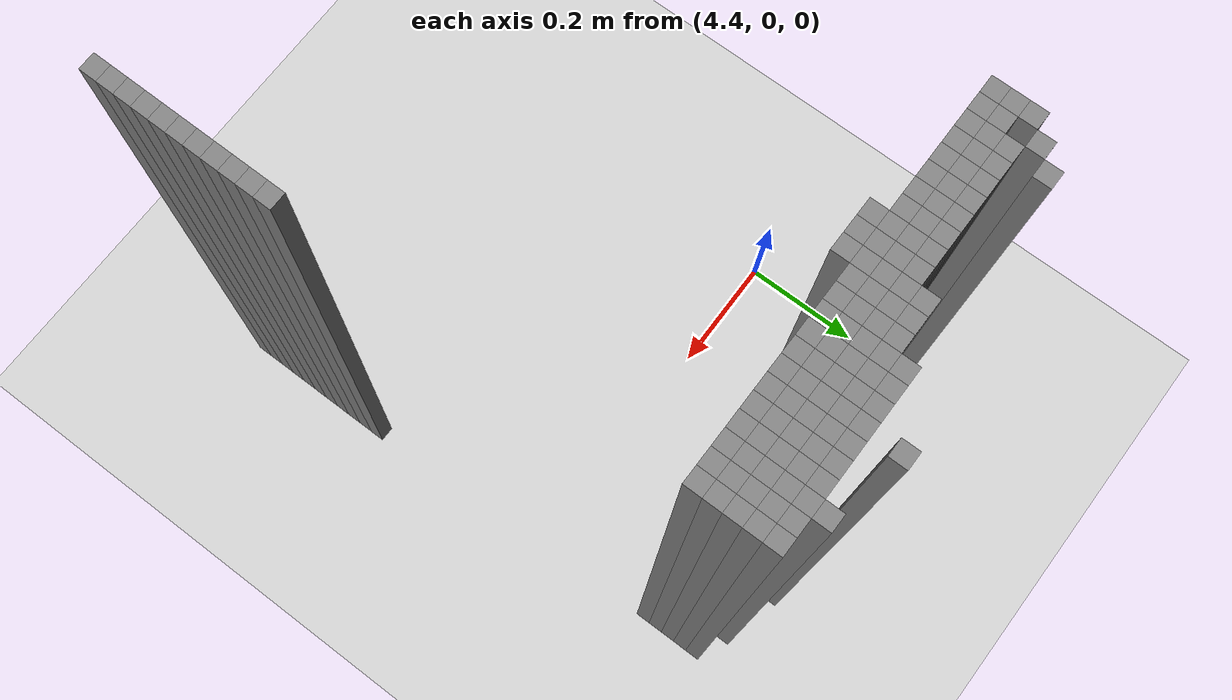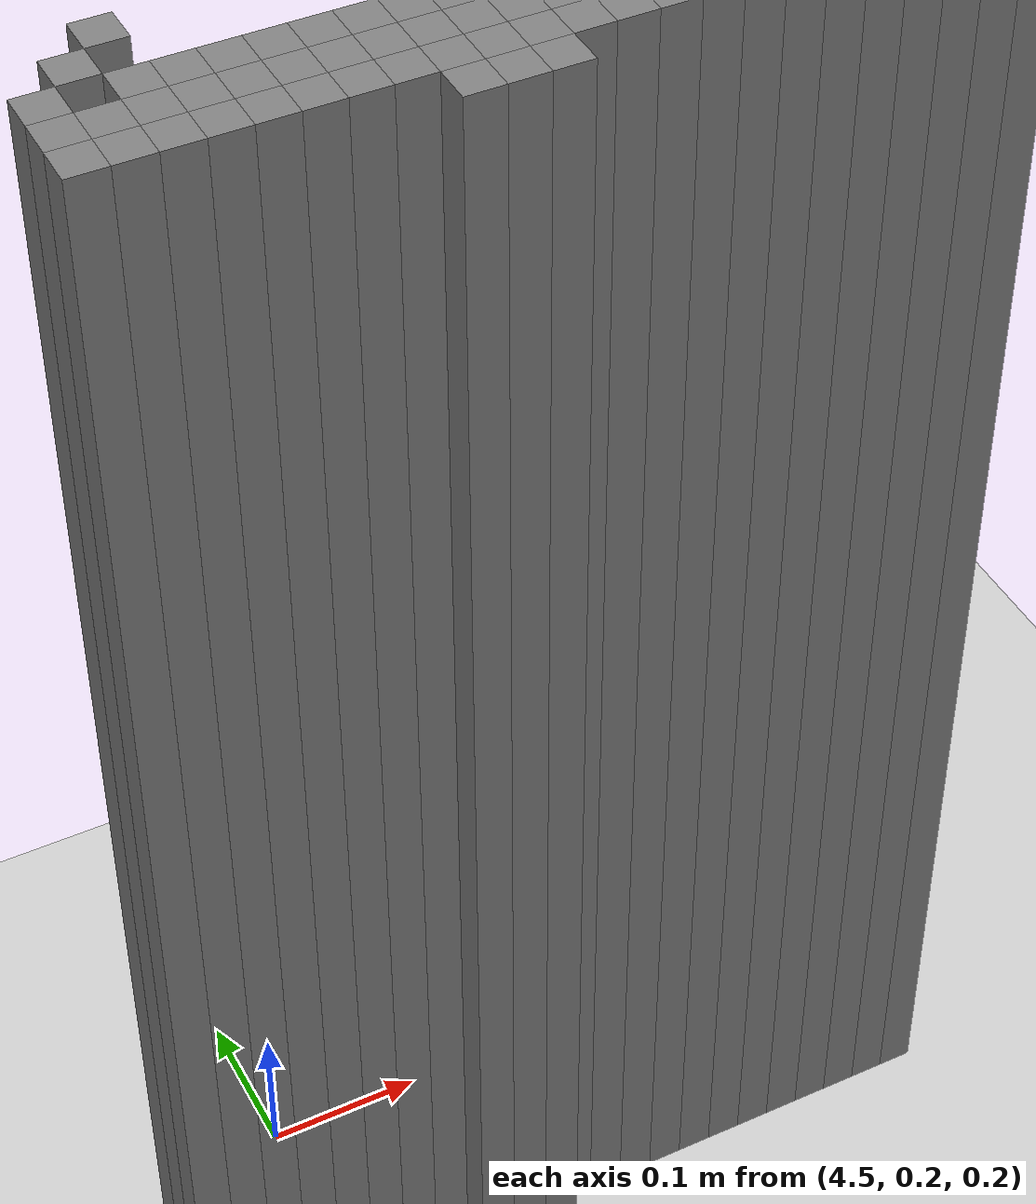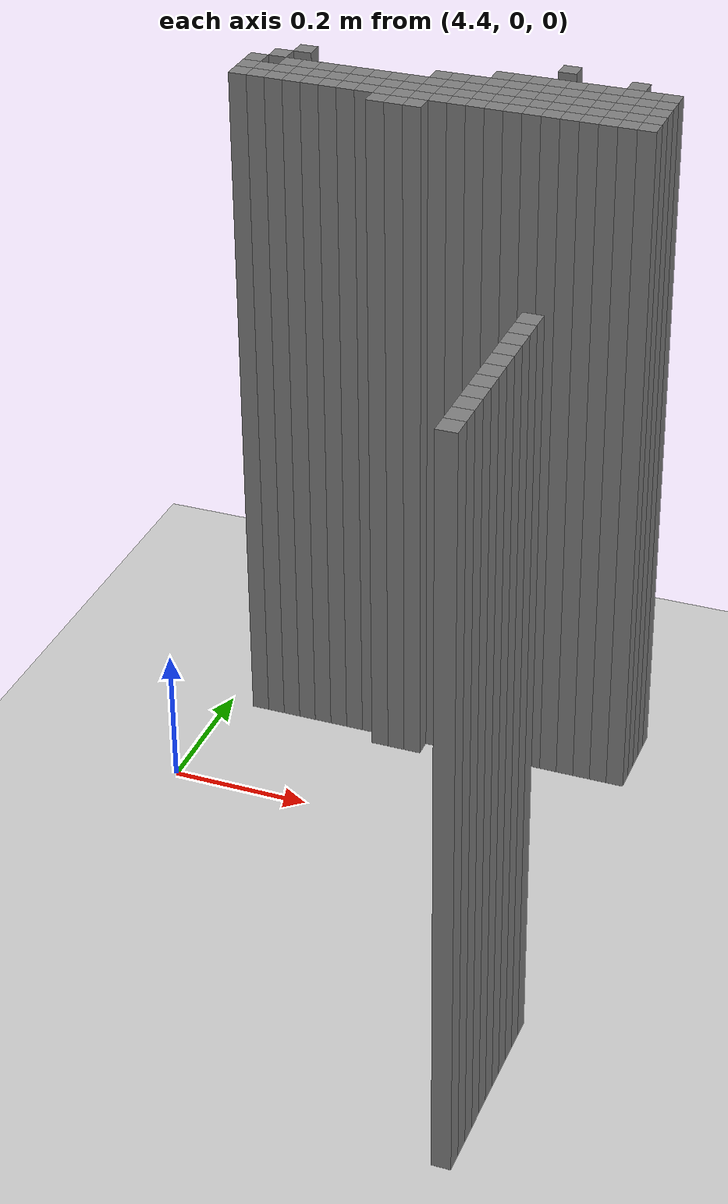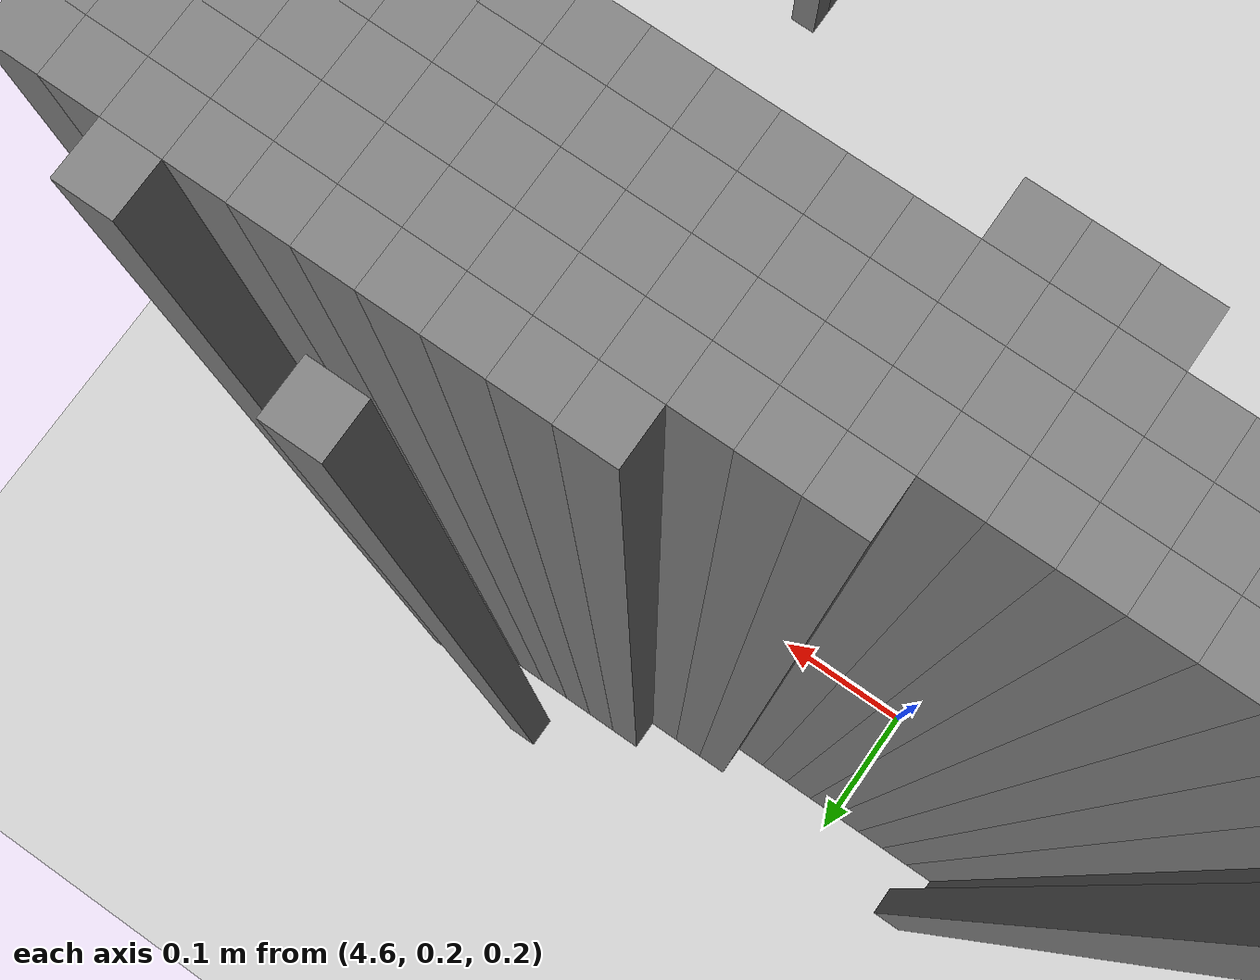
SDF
<sdf version="1.6">
 <world name="map_world">
  <include><uri>model://ground_plane</uri></include>
  <include><uri>model://sun</uri></include>
  <model name="obs_287_35">
   <static>true</static>
   <link name="link">
    <collision name="collision"><geometry><box><size>0.025 0.025 1.0</size></box></geometry></collision>
    <visual name="visual">
     <geometry><box><size>0.025 0.025 1.0</size></box></geometry>
     <material><ambient>0.5 0.5 0.5 1</ambient></material>
    </visual>
   </link>
   <pose>4.848765 0.35592900000000016 0.5 0 0 0</pose>
  </model>
  <model name="obs_291_36">
   <static>true</static>
   <link name="link">
    <collision name="collision"><geometry><box><size>0.025 0.025 1.0</size></box></geometry></collision>
    <visual name="visual">
     <geometry><box><size>0.025 0.025 1.0</size></box></geometry>
     <material><ambient>0.5 0.5 0.5 1</ambient></material>
    </visual>
   </link>
   <pose>4.948765 0.33092900000000025 0.5 0 0 0</pose>
  </model>
  <model name="obs_273_37">
   <static>true</static>
   <link name="link">
    <collision name="collision"><geometry><box><size>0.025 0.025 1.0</size></box></geometry></collision>
    <visual name="visual">
     <geometry><box><size>0.025 0.025 1.0</size></box></geometry>
     <material><ambient>0.5 0.5 0.5 1</ambient></material>
    </visual>
   </link>
   <pose>4.498765000000001 0.30592900000000034 0.5 0 0 0</pose>
  </model>
  <model name="obs_284_37">
   <static>true</static>
   <link name="link">
    <collision name="collision"><geometry><box><size>0.025 0.025 1.0</size></box></geometry></collision>
    <visual name="visual">
     <geometry><box><size>0.025 0.025 1.0</size></box></geometry>
     <material><ambient>0.5 0.5 0.5 1</ambient></material>
    </visual>
   </link>
   <pose>4.773765000000001 0.30592900000000034 0.5 0 0 0</pose>
  </model>
  <model name="obs_285_37">
   <static>true</static>
   <link name="link">
    <collision name="collision"><geometry><box><size>0.025 0.025 1.0</size></box></geometry></collision>
    <visual name="visual">
     <geometry><box><size>0.025 0.025 1.0</size></box></geometry>
     <material><ambient>0.5 0.5 0.5 1</ambient></material>
    </visual>
   </link>
   <pose>4.7987649999999995 0.30592900000000034 0.5 0 0 0</pose>
  </model>
  <model name="obs_286_37">
   <static>true</static>
   <link name="link">
    <collision name="collision"><geometry><box><size>0.025 0.025 1.0</size></box></geometry></collision>
    <visual name="visual">
     <geometry><box><size>0.025 0.025 1.0</size></box></geometry>
     <material><ambient>0.5 0.5 0.5 1</ambient></material>
    </visual>
   </link>
   <pose>4.823765 0.30592900000000034 0.5 0 0 0</pose>
  </model>
  <model name="obs_287_37">
   <static>true</static>
   <link name="link">
    <collision name="collision"><geometry><box><size>0.025 0.025 1.0</size></box></geometry></collision>
    <visual name="visual">
     <geometry><box><size>0.025 0.025 1.0</size></box></geometry>
     <material><ambient>0.5 0.5 0.5 1</ambient></material>
    </visual>
   </link>
   <pose>4.848765 0.30592900000000034 0.5 0 0 0</pose>
  </model>
  <model name="obs_288_37">
   <static>true</static>
   <link name="link">
    <collision name="collision"><geometry><box><size>0.025 0.025 1.0</size></box></geometry></collision>
    <visual name="visual">
     <geometry><box><size>0.025 0.025 1.0</size></box></geometry>
     <material><ambient>0.5 0.5 0.5 1</ambient></material>
    </visual>
   </link>
   <pose>4.873765000000001 0.30592900000000034 0.5 0 0 0</pose>
  </model>
  <model name="obs_289_37">
   <static>true</static>
   <link name="link">
    <collision name="collision"><geometry><box><size>0.025 0.025 1.0</size></box></geometry></collision>
    <visual name="visual">
     <geometry><box><size>0.025 0.025 1.0</size></box></geometry>
     <material><ambient>0.5 0.5 0.5 1</ambient></material>
    </visual>
   </link>
   <pose>4.898765000000001 0.30592900000000034 0.5 0 0 0</pose>
  </model>
  <model name="obs_290_37">
   <static>true</static>
   <link name="link">
    <collision name="collision"><geometry><box><size>0.025 0.025 1.0</size></box></geometry></collision>
    <visual name="visual">
     <geometry><box><size>0.025 0.025 1.0</size></box></geometry>
     <material><ambient>0.5 0.5 0.5 1</ambient></material>
    </visual>
   </link>
   <pose>4.9237649999999995 0.30592900000000034 0.5 0 0 0</pose>
  </model>
  <model name="obs_291_37">
   <static>true</static>
   <link name="link">
    <collision name="collision"><geometry><box><size>0.025 0.025 1.0</size></box></geometry></collision>
    <visual name="visual">
     <geometry><box><size>0.025 0.025 1.0</size></box></geometry>
     <material><ambient>0.5 0.5 0.5 1</ambient></material>
    </visual>
   </link>
   <pose>4.948765 0.30592900000000034 0.5 0 0 0</pose>
  </model>
  <model name="obs_292_37">
   <static>true</static>
   <link name="link">
    <collision name="collision"><geometry><box><size>0.025 0.025 1.0</size></box></geometry></collision>
    <visual name="visual">
     <geometry><box><size>0.025 0.025 1.0</size></box></geometry>
     <material><ambient>0.5 0.5 0.5 1</ambient></material>
    </visual>
   </link>
   <pose>4.973765 0.30592900000000034 0.5 0 0 0</pose>
  </model>
  <model name="obs_293_37">
   <static>true</static>
   <link name="link">
    <collision name="collision"><geometry><box><size>0.025 0.025 1.0</size></box></geometry></collision>
    <visual name="visual">
     <geometry><box><size>0.025 0.025 1.0</size></box></geometry>
     <material><ambient>0.5 0.5 0.5 1</ambient></material>
    </visual>
   </link>
   <pose>4.998765000000001 0.30592900000000034 0.5 0 0 0</pose>
  </model>
  <model name="obs_272_38">
   <static>true</static>
   <link name="link">
    <collision name="collision"><geometry><box><size>0.025 0.025 1.0</size></box></geometry></collision>
    <visual name="visual">
     <geometry><box><size>0.025 0.025 1.0</size></box></geometry>
     <material><ambient>0.5 0.5 0.5 1</ambient></material>
    </visual>
   </link>
   <pose>4.473765 0.280929 0.5 0 0 0</pose>
  </model>
  <model name="obs_281_38">
   <static>true</static>
   <link name="link">
    <collision name="collision"><geometry><box><size>0.025 0.025 1.0</size></box></geometry></collision>
    <visual name="visual">
     <geometry><box><size>0.025 0.025 1.0</size></box></geometry>
     <material><ambient>0.5 0.5 0.5 1</ambient></material>
    </visual>
   </link>
   <pose>4.698765 0.280929 0.5 0 0 0</pose>
  </model>
  <model name="obs_282_38">
   <static>true</static>
   <link name="link">
    <collision name="collision"><geometry><box><size>0.025 0.025 1.0</size></box></geometry></collision>
    <visual name="visual">
     <geometry><box><size>0.025 0.025 1.0</size></box></geometry>
     <material><ambient>0.5 0.5 0.5 1</ambient></material>
    </visual>
   </link>
   <pose>4.723765 0.280929 0.5 0 0 0</pose>
  </model>
  <model name="obs_283_38">
   <static>true</static>
   <link name="link">
    <collision name="collision"><geometry><box><size>0.025 0.025 1.0</size></box></geometry></collision>
    <visual name="visual">
     <geometry><box><size>0.025 0.025 1.0</size></box></geometry>
     <material><ambient>0.5 0.5 0.5 1</ambient></material>
    </visual>
   </link>
   <pose>4.748765000000001 0.280929 0.5 0 0 0</pose>
  </model>
  <model name="obs_284_38">
   <static>true</static>
   <link name="link">
    <collision name="collision"><geometry><box><size>0.025 0.025 1.0</size></box></geometry></collision>
    <visual name="visual">
     <geometry><box><size>0.025 0.025 1.0</size></box></geometry>
     <material><ambient>0.5 0.5 0.5 1</ambient></material>
    </visual>
   </link>
   <pose>4.773765000000001 0.280929 0.5 0 0 0</pose>
  </model>
  <model name="obs_285_38">
   <static>true</static>
   <link name="link">
    <collision name="collision"><geometry><box><size>0.025 0.025 1.0</size></box></geometry></collision>
    <visual name="visual">
     <geometry><box><size>0.025 0.025 1.0</size></box></geometry>
     <material><ambient>0.5 0.5 0.5 1</ambient></material>
    </visual>
   </link>
   <pose>4.7987649999999995 0.280929 0.5 0 0 0</pose>
  </model>
  <model name="obs_286_38">
   <static>true</static>
   <link name="link">
    <collision name="collision"><geometry><box><size>0.025 0.025 1.0</size></box></geometry></collision>
    <visual name="visual">
     <geometry><box><size>0.025 0.025 1.0</size></box></geometry>
     <material><ambient>0.5 0.5 0.5 1</ambient></material>
    </visual>
   </link>
   <pose>4.823765 0.280929 0.5 0 0 0</pose>
  </model>
  <model name="obs_287_38">
   <static>true</static>
   <link name="link">
    <collision name="collision"><geometry><box><size>0.025 0.025 1.0</size></box></geometry></collision>
    <visual name="visual">
     <geometry><box><size>0.025 0.025 1.0</size></box></geometry>
     <material><ambient>0.5 0.5 0.5 1</ambient></material>
    </visual>
   </link>
   <pose>4.848765 0.280929 0.5 0 0 0</pose>
  </model>
  <model name="obs_288_38">
   <static>true</static>
   <link name="link">
    <collision name="collision"><geometry><box><size>0.025 0.025 1.0</size></box></geometry></collision>
    <visual name="visual">
     <geometry><box><size>0.025 0.025 1.0</size></box></geometry>
     <material><ambient>0.5 0.5 0.5 1</ambient></material>
    </visual>
   </link>
   <pose>4.873765000000001 0.280929 0.5 0 0 0</pose>
  </model>
  <model name="obs_289_38">
   <static>true</static>
   <link name="link">
    <collision name="collision"><geometry><box><size>0.025 0.025 1.0</size></box></geometry></collision>
    <visual name="visual">
     <geometry><box><size>0.025 0.025 1.0</size></box></geometry>
     <material><ambient>0.5 0.5 0.5 1</ambient></material>
    </visual>
   </link>
   <pose>4.898765000000001 0.280929 0.5 0 0 0</pose>
  </model>
  <model name="obs_290_38">
   <static>true</static>
   <link name="link">
    <collision name="collision"><geometry><box><size>0.025 0.025 1.0</size></box></geometry></collision>
    <visual name="visual">
     <geometry><box><size>0.025 0.025 1.0</size></box></geometry>
     <material><ambient>0.5 0.5 0.5 1</ambient></material>
    </visual>
   </link>
   <pose>4.9237649999999995 0.280929 0.5 0 0 0</pose>
  </model>
  <model name="obs_291_38">
   <static>true</static>
   <link name="link">
    <collision name="collision"><geometry><box><size>0.025 0.025 1.0</size></box></geometry></collision>
    <visual name="visual">
     <geometry><box><size>0.025 0.025 1.0</size></box></geometry>
     <material><ambient>0.5 0.5 0.5 1</ambient></material>
    </visual>
   </link>
   <pose>4.948765 0.280929 0.5 0 0 0</pose>
  </model>
  <model name="obs_292_38">
   <static>true</static>
   <link name="link">
    <collision name="collision"><geometry><box><size>0.025 0.025 1.0</size></box></geometry></collision>
    <visual name="visual">
     <geometry><box><size>0.025 0.025 1.0</size></box></geometry>
     <material><ambient>0.5 0.5 0.5 1</ambient></material>
    </visual>
   </link>
   <pose>4.973765 0.280929 0.5 0 0 0</pose>
  </model>
  <model name="obs_293_38">
   <static>true</static>
   <link name="link">
    <collision name="collision"><geometry><box><size>0.025 0.025 1.0</size></box></geometry></collision>
    <visual name="visual">
     <geometry><box><size>0.025 0.025 1.0</size></box></geometry>
     <material><ambient>0.5 0.5 0.5 1</ambient></material>
    </visual>
   </link>
   <pose>4.998765000000001 0.280929 0.5 0 0 0</pose>
  </model>
  <model name="obs_271_39">
   <static>true</static>
   <link name="link">
    <collision name="collision"><geometry><box><size>0.025 0.025 1.0</size></box></geometry></collision>
    <visual name="visual">
     <geometry><box><size>0.025 0.025 1.0</size></box></geometry>
     <material><ambient>0.5 0.5 0.5 1</ambient></material>
    </visual>
   </link>
   <pose>4.448765 0.2559290000000001 0.5 0 0 0</pose>
  </model>
  <model name="obs_273_39">
   <static>true</static>
   <link name="link">
    <collision name="collision"><geometry><box><size>0.025 0.025 1.0</size></box></geometry></collision>
    <visual name="visual">
     <geometry><box><size>0.025 0.025 1.0</size></box></geometry>
     <material><ambient>0.5 0.5 0.5 1</ambient></material>
    </visual>
   </link>
   <pose>4.498765000000001 0.2559290000000001 0.5 0 0 0</pose>
  </model>
  <model name="obs_274_39">
   <static>true</static>
   <link name="link">
    <collision name="collision"><geometry><box><size>0.025 0.025 1.0</size></box></geometry></collision>
    <visual name="visual">
     <geometry><box><size>0.025 0.025 1.0</size></box></geometry>
     <material><ambient>0.5 0.5 0.5 1</ambient></material>
    </visual>
   </link>
   <pose>4.523765000000001 0.2559290000000001 0.5 0 0 0</pose>
  </model>
  <model name="obs_275_39">
   <static>true</static>
   <link name="link">
    <collision name="collision"><geometry><box><size>0.025 0.025 1.0</size></box></geometry></collision>
    <visual name="visual">
     <geometry><box><size>0.025 0.025 1.0</size></box></geometry>
     <material><ambient>0.5 0.5 0.5 1</ambient></material>
    </visual>
   </link>
   <pose>4.5487649999999995 0.2559290000000001 0.5 0 0 0</pose>
  </model>
  <model name="obs_276_39">
   <static>true</static>
   <link name="link">
    <collision name="collision"><geometry><box><size>0.025 0.025 1.0</size></box></geometry></collision>
    <visual name="visual">
     <geometry><box><size>0.025 0.025 1.0</size></box></geometry>
     <material><ambient>0.5 0.5 0.5 1</ambient></material>
    </visual>
   </link>
   <pose>4.573765 0.2559290000000001 0.5 0 0 0</pose>
  </model>
  <model name="obs_277_39">
   <static>true</static>
   <link name="link">
    <collision name="collision"><geometry><box><size>0.025 0.025 1.0</size></box></geometry></collision>
    <visual name="visual">
     <geometry><box><size>0.025 0.025 1.0</size></box></geometry>
     <material><ambient>0.5 0.5 0.5 1</ambient></material>
    </visual>
   </link>
   <pose>4.598765 0.2559290000000001 0.5 0 0 0</pose>
  </model>
  <model name="obs_278_39">
   <static>true</static>
   <link name="link">
    <collision name="collision"><geometry><box><size>0.025 0.025 1.0</size></box></geometry></collision>
    <visual name="visual">
     <geometry><box><size>0.025 0.025 1.0</size></box></geometry>
     <material><ambient>0.5 0.5 0.5 1</ambient></material>
    </visual>
   </link>
   <pose>4.623765000000001 0.2559290000000001 0.5 0 0 0</pose>
  </model>
  <model name="obs_279_39">
   <static>true</static>
   <link name="link">
    <collision name="collision"><geometry><box><size>0.025 0.025 1.0</size></box></geometry></collision>
    <visual name="visual">
     <geometry><box><size>0.025 0.025 1.0</size></box></geometry>
     <material><ambient>0.5 0.5 0.5 1</ambient></material>
    </visual>
   </link>
   <pose>4.648765000000001 0.2559290000000001 0.5 0 0 0</pose>
  </model>
  <model name="obs_280_39">
   <static>true</static>
   <link name="link">
    <collision name="collision"><geometry><box><size>0.025 0.025 1.0</size></box></geometry></collision>
    <visual name="visual">
     <geometry><box><size>0.025 0.025 1.0</size></box></geometry>
     <material><ambient>0.5 0.5 0.5 1</ambient></material>
    </visual>
   </link>
   <pose>4.6737649999999995 0.2559290000000001 0.5 0 0 0</pose>
  </model>
  <model name="obs_281_39">
   <static>true</static>
   <link name="link">
    <collision name="collision"><geometry><box><size>0.025 0.025 1.0</size></box></geometry></collision>
    <visual name="visual">
     <geometry><box><size>0.025 0.025 1.0</size></box></geometry>
     <material><ambient>0.5 0.5 0.5 1</ambient></material>
    </visual>
   </link>
   <pose>4.698765 0.2559290000000001 0.5 0 0 0</pose>
  </model>
  <model name="obs_282_39">
   <static>true</static>
   <link name="link">
    <collision name="collision"><geometry><box><size>0.025 0.025 1.0</size></box></geometry></collision>
    <visual name="visual">
     <geometry><box><size>0.025 0.025 1.0</size></box></geometry>
     <material><ambient>0.5 0.5 0.5 1</ambient></material>
    </visual>
   </link>
   <pose>4.723765 0.2559290000000001 0.5 0 0 0</pose>
  </model>
  <model name="obs_283_39">
   <static>true</static>
   <link name="link">
    <collision name="collision"><geometry><box><size>0.025 0.025 1.0</size></box></geometry></collision>
    <visual name="visual">
     <geometry><box><size>0.025 0.025 1.0</size></box></geometry>
     <material><ambient>0.5 0.5 0.5 1</ambient></material>
    </visual>
   </link>
   <pose>4.748765000000001 0.2559290000000001 0.5 0 0 0</pose>
  </model>
  <model name="obs_284_39">
   <static>true</static>
   <link name="link">
    <collision name="collision"><geometry><box><size>0.025 0.025 1.0</size></box></geometry></collision>
    <visual name="visual">
     <geometry><box><size>0.025 0.025 1.0</size></box></geometry>
     <material><ambient>0.5 0.5 0.5 1</ambient></material>
    </visual>
   </link>
   <pose>4.773765000000001 0.2559290000000001 0.5 0 0 0</pose>
  </model>
  <model name="obs_285_39">
   <static>true</static>
   <link name="link">
    <collision name="collision"><geometry><box><size>0.025 0.025 1.0</size></box></geometry></collision>
    <visual name="visual">
     <geometry><box><size>0.025 0.025 1.0</size></box></geometry>
     <material><ambient>0.5 0.5 0.5 1</ambient></material>
    </visual>
   </link>
   <pose>4.7987649999999995 0.2559290000000001 0.5 0 0 0</pose>
  </model>
  <model name="obs_286_39">
   <static>true</static>
   <link name="link">
    <collision name="collision"><geometry><box><size>0.025 0.025 1.0</size></box></geometry></collision>
    <visual name="visual">
     <geometry><box><size>0.025 0.025 1.0</size></box></geometry>
     <material><ambient>0.5 0.5 0.5 1</ambient></material>
    </visual>
   </link>
   <pose>4.823765 0.2559290000000001 0.5 0 0 0</pose>
  </model>
  <model name="obs_287_39">
   <static>true</static>
   <link name="link">
    <collision name="collision"><geometry><box><size>0.025 0.025 1.0</size></box></geometry></collision>
    <visual name="visual">
     <geometry><box><size>0.025 0.025 1.0</size></box></geometry>
     <material><ambient>0.5 0.5 0.5 1</ambient></material>
    </visual>
   </link>
   <pose>4.848765 0.2559290000000001 0.5 0 0 0</pose>
  </model>
  <model name="obs_288_39">
   <static>true</static>
   <link name="link">
    <collision name="collision"><geometry><box><size>0.025 0.025 1.0</size></box></geometry></collision>
    <visual name="visual">
     <geometry><box><size>0.025 0.025 1.0</size></box></geometry>
     <material><ambient>0.5 0.5 0.5 1</ambient></material>
    </visual>
   </link>
   <pose>4.873765000000001 0.2559290000000001 0.5 0 0 0</pose>
  </model>
  <model name="obs_289_39">
   <static>true</static>
   <link name="link">
    <collision name="collision"><geometry><box><size>0.025 0.025 1.0</size></box></geometry></collision>
    <visual name="visual">
     <geometry><box><size>0.025 0.025 1.0</size></box></geometry>
     <material><ambient>0.5 0.5 0.5 1</ambient></material>
    </visual>
   </link>
   <pose>4.898765000000001 0.2559290000000001 0.5 0 0 0</pose>
  </model>
  <model name="obs_290_39">
   <static>true</static>
   <link name="link">
    <collision name="collision"><geometry><box><size>0.025 0.025 1.0</size></box></geometry></collision>
    <visual name="visual">
     <geometry><box><size>0.025 0.025 1.0</size></box></geometry>
     <material><ambient>0.5 0.5 0.5 1</ambient></material>
    </visual>
   </link>
   <pose>4.9237649999999995 0.2559290000000001 0.5 0 0 0</pose>
  </model>
  <model name="obs_291_39">
   <static>true</static>
   <link name="link">
    <collision name="collision"><geometry><box><size>0.025 0.025 1.0</size></box></geometry></collision>
    <visual name="visual">
     <geometry><box><size>0.025 0.025 1.0</size></box></geometry>
     <material><ambient>0.5 0.5 0.5 1</ambient></material>
    </visual>
   </link>
   <pose>4.948765 0.2559290000000001 0.5 0 0 0</pose>
  </model>
  <model name="obs_292_39">
   <static>true</static>
   <link name="link">
    <collision name="collision"><geometry><box><size>0.025 0.025 1.0</size></box></geometry></collision>
    <visual name="visual">
     <geometry><box><size>0.025 0.025 1.0</size></box></geometry>
     <material><ambient>0.5 0.5 0.5 1</ambient></material>
    </visual>
   </link>
   <pose>4.973765 0.2559290000000001 0.5 0 0 0</pose>
  </model>
  <model name="obs_293_39">
   <static>true</static>
   <link name="link">
    <collision name="collision"><geometry><box><size>0.025 0.025 1.0</size></box></geometry></collision>
    <visual name="visual">
     <geometry><box><size>0.025 0.025 1.0</size></box></geometry>
     <material><ambient>0.5 0.5 0.5 1</ambient></material>
    </visual>
   </link>
   <pose>4.998765000000001 0.2559290000000001 0.5 0 0 0</pose>
  </model>
  <model name="obs_271_40">
   <static>true</static>
   <link name="link">
    <collision name="collision"><geometry><box><size>0.025 0.025 1.0</size></box></geometry></collision>
    <visual name="visual">
     <geometry><box><size>0.025 0.025 1.0</size></box></geometry>
     <material><ambient>0.5 0.5 0.5 1</ambient></material>
    </visual>
   </link>
   <pose>4.448765 0.23092900000000016 0.5 0 0 0</pose>
  </model>
  <model name="obs_272_40">
   <static>true</static>
   <link name="link">
    <collision name="collision"><geometry><box><size>0.025 0.025 1.0</size></box></geometry></collision>
    <visual name="visual">
     <geometry><box><size>0.025 0.025 1.0</size></box></geometry>
     <material><ambient>0.5 0.5 0.5 1</ambient></material>
    </visual>
   </link>
   <pose>4.473765 0.23092900000000016 0.5 0 0 0</pose>
  </model>
  <model name="obs_273_40">
   <static>true</static>
   <link name="link">
    <collision name="collision"><geometry><box><size>0.025 0.025 1.0</size></box></geometry></collision>
    <visual name="visual">
     <geometry><box><size>0.025 0.025 1.0</size></box></geometry>
     <material><ambient>0.5 0.5 0.5 1</ambient></material>
    </visual>
   </link>
   <pose>4.498765000000001 0.23092900000000016 0.5 0 0 0</pose>
  </model>
  <model name="obs_274_40">
   <static>true</static>
   <link name="link">
    <collision name="collision"><geometry><box><size>0.025 0.025 1.0</size></box></geometry></collision>
    <visual name="visual">
     <geometry><box><size>0.025 0.025 1.0</size></box></geometry>
     <material><ambient>0.5 0.5 0.5 1</ambient></material>
    </visual>
   </link>
   <pose>4.523765000000001 0.23092900000000016 0.5 0 0 0</pose>
  </model>
  <model name="obs_275_40">
   <static>true</static>
   <link name="link">
    <collision name="collision"><geometry><box><size>0.025 0.025 1.0</size></box></geometry></collision>
    <visual name="visual">
     <geometry><box><size>0.025 0.025 1.0</size></box></geometry>
     <material><ambient>0.5 0.5 0.5 1</ambient></material>
    </visual>
   </link>
   <pose>4.5487649999999995 0.23092900000000016 0.5 0 0 0</pose>
  </model>
  <model name="obs_276_40">
   <static>true</static>
   <link name="link">
    <collision name="collision"><geometry><box><size>0.025 0.025 1.0</size></box></geometry></collision>
    <visual name="visual">
     <geometry><box><size>0.025 0.025 1.0</size></box></geometry>
     <material><ambient>0.5 0.5 0.5 1</ambient></material>
    </visual>
   </link>
   <pose>4.573765 0.23092900000000016 0.5 0 0 0</pose>
  </model>
  <model name="obs_277_40">
   <static>true</static>
   <link name="link">
    <collision name="collision"><geometry><box><size>0.025 0.025 1.0</size></box></geometry></collision>
    <visual name="visual">
     <geometry><box><size>0.025 0.025 1.0</size></box></geometry>
     <material><ambient>0.5 0.5 0.5 1</ambient></material>
    </visual>
   </link>
   <pose>4.598765 0.23092900000000016 0.5 0 0 0</pose>
  </model>
  <model name="obs_278_40">
   <static>true</static>
   <link name="link">
    <collision name="collision"><geometry><box><size>0.025 0.025 1.0</size></box></geometry></collision>
    <visual name="visual">
     <geometry><box><size>0.025 0.025 1.0</size></box></geometry>
     <material><ambient>0.5 0.5 0.5 1</ambient></material>
    </visual>
   </link>
   <pose>4.623765000000001 0.23092900000000016 0.5 0 0 0</pose>
  </model>
  <model name="obs_279_40">
   <static>true</static>
   <link name="link">
    <collision name="collision"><geometry><box><size>0.025 0.025 1.0</size></box></geometry></collision>
    <visual name="visual">
     <geometry><box><size>0.025 0.025 1.0</size></box></geometry>
     <material><ambient>0.5 0.5 0.5 1</ambient></material>
    </visual>
   </link>
   <pose>4.648765000000001 0.23092900000000016 0.5 0 0 0</pose>
  </model>
  <model name="obs_280_40">
   <static>true</static>
   <link name="link">
    <collision name="collision"><geometry><box><size>0.025 0.025 1.0</size></box></geometry></collision>
    <visual name="visual">
     <geometry><box><size>0.025 0.025 1.0</size></box></geometry>
     <material><ambient>0.5 0.5 0.5 1</ambient></material>
    </visual>
   </link>
   <pose>4.6737649999999995 0.23092900000000016 0.5 0 0 0</pose>
  </model>
  <model name="obs_281_40">
   <static>true</static>
   <link name="link">
    <collision name="collision"><geometry><box><size>0.025 0.025 1.0</size></box></geometry></collision>
    <visual name="visual">
     <geometry><box><size>0.025 0.025 1.0</size></box></geometry>
     <material><ambient>0.5 0.5 0.5 1</ambient></material>
    </visual>
   </link>
   <pose>4.698765 0.23092900000000016 0.5 0 0 0</pose>
  </model>
  <model name="obs_282_40">
   <static>true</static>
   <link name="link">
    <collision name="collision"><geometry><box><size>0.025 0.025 1.0</size></box></geometry></collision>
    <visual name="visual">
     <geometry><box><size>0.025 0.025 1.0</size></box></geometry>
     <material><ambient>0.5 0.5 0.5 1</ambient></material>
    </visual>
   </link>
   <pose>4.723765 0.23092900000000016 0.5 0 0 0</pose>
  </model>
  <model name="obs_283_40">
   <static>true</static>
   <link name="link">
    <collision name="collision"><geometry><box><size>0.025 0.025 1.0</size></box></geometry></collision>
    <visual name="visual">
     <geometry><box><size>0.025 0.025 1.0</size></box></geometry>
     <material><ambient>0.5 0.5 0.5 1</ambient></material>
    </visual>
   </link>
   <pose>4.748765000000001 0.23092900000000016 0.5 0 0 0</pose>
  </model>
  <model name="obs_284_40">
   <static>true</static>
   <link name="link">
    <collision name="collision"><geometry><box><size>0.025 0.025 1.0</size></box></geometry></collision>
    <visual name="visual">
     <geometry><box><size>0.025 0.025 1.0</size></box></geometry>
     <material><ambient>0.5 0.5 0.5 1</ambient></material>
    </visual>
   </link>
   <pose>4.773765000000001 0.23092900000000016 0.5 0 0 0</pose>
  </model>
  <model name="obs_285_40">
   <static>true</static>
   <link name="link">
    <collision name="collision"><geometry><box><size>0.025 0.025 1.0</size></box></geometry></collision>
    <visual name="visual">
     <geometry><box><size>0.025 0.025 1.0</size></box></geometry>
     <material><ambient>0.5 0.5 0.5 1</ambient></material>
    </visual>
   </link>
   <pose>4.7987649999999995 0.23092900000000016 0.5 0 0 0</pose>
  </model>
  <model name="obs_286_40">
   <static>true</static>
   <link name="link">
    <collision name="collision"><geometry><box><size>0.025 0.025 1.0</size></box></geometry></collision>
    <visual name="visual">
     <geometry><box><size>0.025 0.025 1.0</size></box></geometry>
     <material><ambient>0.5 0.5 0.5 1</ambient></material>
    </visual>
   </link>
   <pose>4.823765 0.23092900000000016 0.5 0 0 0</pose>
  </model>
  <model name="obs_287_40">
   <static>true</static>
   <link name="link">
    <collision name="collision"><geometry><box><size>0.025 0.025 1.0</size></box></geometry></collision>
    <visual name="visual">
     <geometry><box><size>0.025 0.025 1.0</size></box></geometry>
     <material><ambient>0.5 0.5 0.5 1</ambient></material>
    </visual>
   </link>
   <pose>4.848765 0.23092900000000016 0.5 0 0 0</pose>
  </model>
  <model name="obs_288_40">
   <static>true</static>
   <link name="link">
    <collision name="collision"><geometry><box><size>0.025 0.025 1.0</size></box></geometry></collision>
    <visual name="visual">
     <geometry><box><size>0.025 0.025 1.0</size></box></geometry>
     <material><ambient>0.5 0.5 0.5 1</ambient></material>
    </visual>
   </link>
   <pose>4.873765000000001 0.23092900000000016 0.5 0 0 0</pose>
  </model>
  <model name="obs_289_40">
   <static>true</static>
   <link name="link">
    <collision name="collision"><geometry><box><size>0.025 0.025 1.0</size></box></geometry></collision>
    <visual name="visual">
     <geometry><box><size>0.025 0.025 1.0</size></box></geometry>
     <material><ambient>0.5 0.5 0.5 1</ambient></material>
    </visual>
   </link>
   <pose>4.898765000000001 0.23092900000000016 0.5 0 0 0</pose>
  </model>
  <model name="obs_290_40">
   <static>true</static>
   <link name="link">
    <collision name="collision"><geometry><box><size>0.025 0.025 1.0</size></box></geometry></collision>
    <visual name="visual">
     <geometry><box><size>0.025 0.025 1.0</size></box></geometry>
     <material><ambient>0.5 0.5 0.5 1</ambient></material>
    </visual>
   </link>
   <pose>4.9237649999999995 0.23092900000000016 0.5 0 0 0</pose>
  </model>
  <model name="obs_291_40">
   <static>true</static>
   <link name="link">
    <collision name="collision"><geometry><box><size>0.025 0.025 1.0</size></box></geometry></collision>
    <visual name="visual">
     <geometry><box><size>0.025 0.025 1.0</size></box></geometry>
     <material><ambient>0.5 0.5 0.5 1</ambient></material>
    </visual>
   </link>
   <pose>4.948765 0.23092900000000016 0.5 0 0 0</pose>
  </model>
  <model name="obs_292_40">
   <static>true</static>
   <link name="link">
    <collision name="collision"><geometry><box><size>0.025 0.025 1.0</size></box></geometry></collision>
    <visual name="visual">
     <geometry><box><size>0.025 0.025 1.0</size></box></geometry>
     <material><ambient>0.5 0.5 0.5 1</ambient></material>
    </visual>
   </link>
   <pose>4.973765 0.23092900000000016 0.5 0 0 0</pose>
  </model>
  <model name="obs_293_40">
   <static>true</static>
   <link name="link">
    <collision name="collision"><geometry><box><size>0.025 0.025 1.0</size></box></geometry></collision>
    <visual name="visual">
     <geometry><box><size>0.025 0.025 1.0</size></box></geometry>
     <material><ambient>0.5 0.5 0.5 1</ambient></material>
    </visual>
   </link>
   <pose>4.998765000000001 0.23092900000000016 0.5 0 0 0</pose>
  </model>
  <model name="obs_271_41">
   <static>true</static>
   <link name="link">
    <collision name="collision"><geometry><box><size>0.025 0.025 1.0</size></box></geometry></collision>
    <visual name="visual">
     <geometry><box><size>0.025 0.025 1.0</size></box></geometry>
     <material><ambient>0.5 0.5 0.5 1</ambient></material>
    </visual>
   </link>
   <pose>4.448765 0.20592900000000025 0.5 0 0 0</pose>
  </model>
  <model name="obs_272_41">
   <static>true</static>
   <link name="link">
    <collision name="collision"><geometry><box><size>0.025 0.025 1.0</size></box></geometry></collision>
    <visual name="visual">
     <geometry><box><size>0.025 0.025 1.0</size></box></geometry>
     <material><ambient>0.5 0.5 0.5 1</ambient></material>
    </visual>
   </link>
   <pose>4.473765 0.20592900000000025 0.5 0 0 0</pose>
  </model>
  <model name="obs_273_41">
   <static>true</static>
   <link name="link">
    <collision name="collision"><geometry><box><size>0.025 0.025 1.0</size></box></geometry></collision>
    <visual name="visual">
     <geometry><box><size>0.025 0.025 1.0</size></box></geometry>
     <material><ambient>0.5 0.5 0.5 1</ambient></material>
    </visual>
   </link>
   <pose>4.498765000000001 0.20592900000000025 0.5 0 0 0</pose>
  </model>
  <model name="obs_274_41">
   <static>true</static>
   <link name="link">
    <collision name="collision"><geometry><box><size>0.025 0.025 1.0</size></box></geometry></collision>
    <visual name="visual">
     <geometry><box><size>0.025 0.025 1.0</size></box></geometry>
     <material><ambient>0.5 0.5 0.5 1</ambient></material>
    </visual>
   </link>
   <pose>4.523765000000001 0.20592900000000025 0.5 0 0 0</pose>
  </model>
  <model name="obs_275_41">
   <static>true</static>
   <link name="link">
    <collision name="collision"><geometry><box><size>0.025 0.025 1.0</size></box></geometry></collision>
    <visual name="visual">
     <geometry><box><size>0.025 0.025 1.0</size></box></geometry>
     <material><ambient>0.5 0.5 0.5 1</ambient></material>
    </visual>
   </link>
   <pose>4.5487649999999995 0.20592900000000025 0.5 0 0 0</pose>
  </model>
  <model name="obs_276_41">
   <static>true</static>
   <link name="link">
    <collision name="collision"><geometry><box><size>0.025 0.025 1.0</size></box></geometry></collision>
    <visual name="visual">
     <geometry><box><size>0.025 0.025 1.0</size></box></geometry>
     <material><ambient>0.5 0.5 0.5 1</ambient></material>
    </visual>
   </link>
   <pose>4.573765 0.20592900000000025 0.5 0 0 0</pose>
  </model>
  <model name="obs_277_41">
   <static>true</static>
   <link name="link">
    <collision name="collision"><geometry><box><size>0.025 0.025 1.0</size></box></geometry></collision>
    <visual name="visual">
     <geometry><box><size>0.025 0.025 1.0</size></box></geometry>
     <material><ambient>0.5 0.5 0.5 1</ambient></material>
    </visual>
   </link>
   <pose>4.598765 0.20592900000000025 0.5 0 0 0</pose>
  </model>
  <model name="obs_278_41">
   <static>true</static>
   <link name="link">
    <collision name="collision"><geometry><box><size>0.025 0.025 1.0</size></box></geometry></collision>
    <visual name="visual">
     <geometry><box><size>0.025 0.025 1.0</size></box></geometry>
     <material><ambient>0.5 0.5 0.5 1</ambient></material>
    </visual>
   </link>
   <pose>4.623765000000001 0.20592900000000025 0.5 0 0 0</pose>
  </model>
  <model name="obs_279_41">
   <static>true</static>
   <link name="link">
    <collision name="collision"><geometry><box><size>0.025 0.025 1.0</size></box></geometry></collision>
    <visual name="visual">
     <geometry><box><size>0.025 0.025 1.0</size></box></geometry>
     <material><ambient>0.5 0.5 0.5 1</ambient></material>
    </visual>
   </link>
   <pose>4.648765000000001 0.20592900000000025 0.5 0 0 0</pose>
  </model>
  <model name="obs_280_41">
   <static>true</static>
   <link name="link">
    <collision name="collision"><geometry><box><size>0.025 0.025 1.0</size></box></geometry></collision>
    <visual name="visual">
     <geometry><box><size>0.025 0.025 1.0</size></box></geometry>
     <material><ambient>0.5 0.5 0.5 1</ambient></material>
    </visual>
   </link>
   <pose>4.6737649999999995 0.20592900000000025 0.5 0 0 0</pose>
  </model>
  <model name="obs_281_41">
   <static>true</static>
   <link name="link">
    <collision name="collision"><geometry><box><size>0.025 0.025 1.0</size></box></geometry></collision>
    <visual name="visual">
     <geometry><box><size>0.025 0.025 1.0</size></box></geometry>
     <material><ambient>0.5 0.5 0.5 1</ambient></material>
    </visual>
   </link>
   <pose>4.698765 0.20592900000000025 0.5 0 0 0</pose>
  </model>
  <model name="obs_282_41">
   <static>true</static>
   <link name="link">
    <collision name="collision"><geometry><box><size>0.025 0.025 1.0</size></box></geometry></collision>
    <visual name="visual">
     <geometry><box><size>0.025 0.025 1.0</size></box></geometry>
     <material><ambient>0.5 0.5 0.5 1</ambient></material>
    </visual>
   </link>
   <pose>4.723765 0.20592900000000025 0.5 0 0 0</pose>
  </model>
  <model name="obs_283_41">
   <static>true</static>
   <link name="link">
    <collision name="collision"><geometry><box><size>0.025 0.025 1.0</size></box></geometry></collision>
    <visual name="visual">
     <geometry><box><size>0.025 0.025 1.0</size></box></geometry>
     <material><ambient>0.5 0.5 0.5 1</ambient></material>
    </visual>
   </link>
   <pose>4.748765000000001 0.20592900000000025 0.5 0 0 0</pose>
  </model>
  <model name="obs_284_41">
   <static>true</static>
   <link name="link">
    <collision name="collision"><geometry><box><size>0.025 0.025 1.0</size></box></geometry></collision>
    <visual name="visual">
     <geometry><box><size>0.025 0.025 1.0</size></box></geometry>
     <material><ambient>0.5 0.5 0.5 1</ambient></material>
    </visual>
   </link>
   <pose>4.773765000000001 0.20592900000000025 0.5 0 0 0</pose>
  </model>
  <model name="obs_285_41">
   <static>true</static>
   <link name="link">
    <collision name="collision"><geometry><box><size>0.025 0.025 1.0</size></box></geometry></collision>
    <visual name="visual">
     <geometry><box><size>0.025 0.025 1.0</size></box></geometry>
     <material><ambient>0.5 0.5 0.5 1</ambient></material>
    </visual>
   </link>
   <pose>4.7987649999999995 0.20592900000000025 0.5 0 0 0</pose>
  </model>
  <model name="obs_286_41">
   <static>true</static>
   <link name="link">
    <collision name="collision"><geometry><box><size>0.025 0.025 1.0</size></box></geometry></collision>
    <visual name="visual">
     <geometry><box><size>0.025 0.025 1.0</size></box></geometry>
     <material><ambient>0.5 0.5 0.5 1</ambient></material>
    </visual>
   </link>
   <pose>4.823765 0.20592900000000025 0.5 0 0 0</pose>
  </model>
  <model name="obs_287_41">
   <static>true</static>
   <link name="link">
    <collision name="collision"><geometry><box><size>0.025 0.025 1.0</size></box></geometry></collision>
    <visual name="visual">
     <geometry><box><size>0.025 0.025 1.0</size></box></geometry>
     <material><ambient>0.5 0.5 0.5 1</ambient></material>
    </visual>
   </link>
   <pose>4.848765 0.20592900000000025 0.5 0 0 0</pose>
  </model>
  <model name="obs_288_41">
   <static>true</static>
   <link name="link">
    <collision name="collision"><geometry><box><size>0.025 0.025 1.0</size></box></geometry></collision>
    <visual name="visual">
     <geometry><box><size>0.025 0.025 1.0</size></box></geometry>
     <material><ambient>0.5 0.5 0.5 1</ambient></material>
    </visual>
   </link>
   <pose>4.873765000000001 0.20592900000000025 0.5 0 0 0</pose>
  </model>
  <model name="obs_289_41">
   <static>true</static>
   <link name="link">
    <collision name="collision"><geometry><box><size>0.025 0.025 1.0</size></box></geometry></collision>
    <visual name="visual">
     <geometry><box><size>0.025 0.025 1.0</size></box></geometry>
     <material><ambient>0.5 0.5 0.5 1</ambient></material>
    </visual>
   </link>
   <pose>4.898765000000001 0.20592900000000025 0.5 0 0 0</pose>
  </model>
  <model name="obs_290_41">
   <static>true</static>
   <link name="link">
    <collision name="collision"><geometry><box><size>0.025 0.025 1.0</size></box></geometry></collision>
    <visual name="visual">
     <geometry><box><size>0.025 0.025 1.0</size></box></geometry>
     <material><ambient>0.5 0.5 0.5 1</ambient></material>
    </visual>
   </link>
   <pose>4.9237649999999995 0.20592900000000025 0.5 0 0 0</pose>
  </model>
  <model name="obs_291_41">
   <static>true</static>
   <link name="link">
    <collision name="collision"><geometry><box><size>0.025 0.025 1.0</size></box></geometry></collision>
    <visual name="visual">
     <geometry><box><size>0.025 0.025 1.0</size></box></geometry>
     <material><ambient>0.5 0.5 0.5 1</ambient></material>
    </visual>
   </link>
   <pose>4.948765 0.20592900000000025 0.5 0 0 0</pose>
  </model>
  <model name="obs_292_41">
   <static>true</static>
   <link name="link">
    <collision name="collision"><geometry><box><size>0.025 0.025 1.0</size></box></geometry></collision>
    <visual name="visual">
     <geometry><box><size>0.025 0.025 1.0</size></box></geometry>
     <material><ambient>0.5 0.5 0.5 1</ambient></material>
    </visual>
   </link>
   <pose>4.973765 0.20592900000000025 0.5 0 0 0</pose>
  </model>
  <model name="obs_293_41">
   <static>true</static>
   <link name="link">
    <collision name="collision"><geometry><box><size>0.025 0.025 1.0</size></box></geometry></collision>
    <visual name="visual">
     <geometry><box><size>0.025 0.025 1.0</size></box></geometry>
     <material><ambient>0.5 0.5 0.5 1</ambient></material>
    </visual>
   </link>
   <pose>4.998765000000001 0.20592900000000025 0.5 0 0 0</pose>
  </model>
  <model name="obs_279_42">
   <static>true</static>
   <link name="link">
    <collision name="collision"><geometry><box><size>0.025 0.025 1.0</size></box></geometry></collision>
    <visual name="visual">
     <geometry><box><size>0.025 0.025 1.0</size></box></geometry>
     <material><ambient>0.5 0.5 0.5 1</ambient></material>
    </visual>
   </link>
   <pose>4.648765000000001 0.18092900000000034 0.5 0 0 0</pose>
  </model>
  <model name="obs_280_42">
   <static>true</static>
   <link name="link">
    <collision name="collision"><geometry><box><size>0.025 0.025 1.0</size></box></geometry></collision>
    <visual name="visual">
     <geometry><box><size>0.025 0.025 1.0</size></box></geometry>
     <material><ambient>0.5 0.5 0.5 1</ambient></material>
    </visual>
   </link>
   <pose>4.6737649999999995 0.18092900000000034 0.5 0 0 0</pose>
  </model>
  <model name="obs_281_42">
   <static>true</static>
   <link name="link">
    <collision name="collision"><geometry><box><size>0.025 0.025 1.0</size></box></geometry></collision>
    <visual name="visual">
     <geometry><box><size>0.025 0.025 1.0</size></box></geometry>
     <material><ambient>0.5 0.5 0.5 1</ambient></material>
    </visual>
   </link>
   <pose>4.698765 0.18092900000000034 0.5 0 0 0</pose>
  </model>
  <model name="obs_294_63">
   <static>true</static>
   <link name="link">
    <collision name="collision"><geometry><box><size>0.025 0.025 1.0</size></box></geometry></collision>
    <visual name="visual">
     <geometry><box><size>0.025 0.025 1.0</size></box></geometry>
     <material><ambient>0.5 0.5 0.5 1</ambient></material>
    </visual>
   </link>
   <pose>5.023765000000001 -0.3440709999999998 0.5 0 0 0</pose>
  </model>
  <model name="obs_294_64">
   <static>true</static>
   <link name="link">
    <collision name="collision"><geometry><box><size>0.025 0.025 1.0</size></box></geometry></collision>
    <visual name="visual">
     <geometry><box><size>0.025 0.025 1.0</size></box></geometry>
     <material><ambient>0.5 0.5 0.5 1</ambient></material>
    </visual>
   </link>
   <pose>5.023765000000001 -0.3690709999999999 0.5 0 0 0</pose>
  </model>
  <model name="obs_294_65">
   <static>true</static>
   <link name="link">
    <collision name="collision"><geometry><box><size>0.025 0.025 1.0</size></box></geometry></collision>
    <visual name="visual">
     <geometry><box><size>0.025 0.025 1.0</size></box></geometry>
     <material><ambient>0.5 0.5 0.5 1</ambient></material>
    </visual>
   </link>
   <pose>5.023765000000001 -0.39407099999999984 0.5 0 0 0</pose>
  </model>
  <model name="obs_294_66">
   <static>true</static>
   <link name="link">
    <collision name="collision"><geometry><box><size>0.025 0.025 1.0</size></box></geometry></collision>
    <visual name="visual">
     <geometry><box><size>0.025 0.025 1.0</size></box></geometry>
     <material><ambient>0.5 0.5 0.5 1</ambient></material>
    </visual>
   </link>
   <pose>5.023765000000001 -0.41907099999999975 0.5 0 0 0</pose>
  </model>
  <model name="obs_294_67">
   <static>true</static>
   <link name="link">
    <collision name="collision"><geometry><box><size>0.025 0.025 1.0</size></box></geometry></collision>
    <visual name="visual">
     <geometry><box><size>0.025 0.025 1.0</size></box></geometry>
     <material><ambient>0.5 0.5 0.5 1</ambient></material>
    </visual>
   </link>
   <pose>5.023765000000001 -0.4440709999999999 0.5 0 0 0</pose>
  </model>
  <model name="obs_294_68">
   <static>true</static>
   <link name="link">
    <collision name="collision"><geometry><box><size>0.025 0.025 1.0</size></box></geometry></collision>
    <visual name="visual">
     <geometry><box><size>0.025 0.025 1.0</size></box></geometry>
     <material><ambient>0.5 0.5 0.5 1</ambient></material>
    </visual>
   </link>
   <pose>5.023765000000001 -0.4690709999999998 0.5 0 0 0</pose>
  </model>
  <model name="obs_294_69">
   <static>true</static>
   <link name="link">
    <collision name="collision"><geometry><box><size>0.025 0.025 1.0</size></box></geometry></collision>
    <visual name="visual">
     <geometry><box><size>0.025 0.025 1.0</size></box></geometry>
     <material><ambient>0.5 0.5 0.5 1</ambient></material>
    </visual>
   </link>
   <pose>5.023765000000001 -0.4940709999999999 0.5 0 0 0</pose>
  </model>
  <model name="obs_294_70">
   <static>true</static>
   <link name="link">
    <collision name="collision"><geometry><box><size>0.025 0.025 1.0</size></box></geometry></collision>
    <visual name="visual">
     <geometry><box><size>0.025 0.025 1.0</size></box></geometry>
     <material><ambient>0.5 0.5 0.5 1</ambient></material>
    </visual>
   </link>
   <pose>5.023765000000001 -0.5190709999999998 0.5 0 0 0</pose>
  </model>
  <model name="obs_294_71">
   <static>true</static>
   <link name="link">
    <collision name="collision"><geometry><box><size>0.025 0.025 1.0</size></box></geometry></collision>
    <visual name="visual">
     <geometry><box><size>0.025 0.025 1.0</size></box></geometry>
     <material><ambient>0.5 0.5 0.5 1</ambient></material>
    </visual>
   </link>
   <pose>5.023765000000001 -0.5440709999999997 0.5 0 0 0</pose>
  </model>
  <model name="obs_294_72">
   <static>true</static>
   <link name="link">
    <collision name="collision"><geometry><box><size>0.025 0.025 1.0</size></box></geometry></collision>
    <visual name="visual">
     <geometry><box><size>0.025 0.025 1.0</size></box></geometry>
     <material><ambient>0.5 0.5 0.5 1</ambient></material>
    </visual>
   </link>
   <pose>5.023765000000001 -0.5690709999999999 0.5 0 0 0</pose>
  </model>
  <model name="obs_294_73">
   <static>true</static>
   <link name="link">
    <collision name="collision"><geometry><box><size>0.025 0.025 1.0</size></box></geometry></collision>
    <visual name="visual">
     <geometry><box><size>0.025 0.025 1.0</size></box></geometry>
     <material><ambient>0.5 0.5 0.5 1</ambient></material>
    </visual>
   </link>
   <pose>5.023765000000001 -0.5940709999999998 0.5 0 0 0</pose>
  </model>
 </world>
</sdf>
